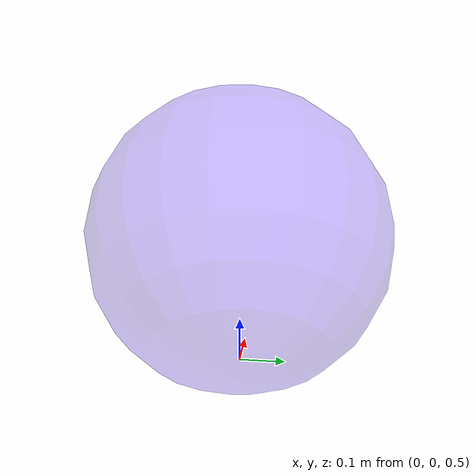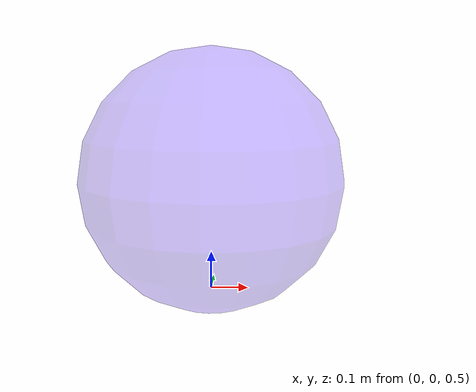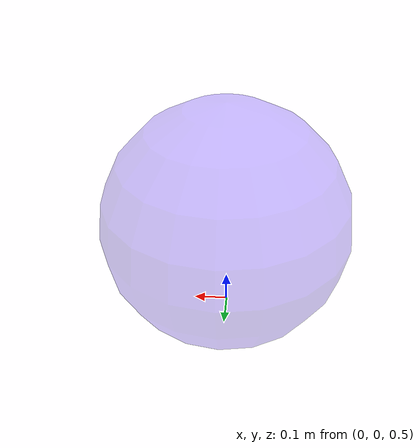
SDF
<?xml version='1.0'?>

<sdf version="1.5">
    <model name="box">
        <static>true</static>
        <link name="link">
            <pose frame=''>0.0 0.0 0.4 0 0 0</pose>
            <inertial>
                <pose frame=''>0 0 0.035 0 0 0</pose>
                <mass>1.0e-19</mass>
                <inertia>
                    <ixx>0.0</ixx>
                    <ixy>0</ixy>
                    <ixz>0</ixz>
                    <iyy>0.0</iyy>
                    <iyz>0</iyz>
                    <izz>0.5</izz>
                </inertia>
            </inertial>

            <visual name="visual">
                <pose>0.0 0.0 0.4 0 0 0</pose>
                <geometry>
                    <sphere>
                        <radius>0.35</radius>

                    </sphere>
                </geometry>
                <material>
                    <ambient>0.3 0.1 1 0.3</ambient>
                    <diffuse>0.3 0.1 1 0.3</diffuse>
                    <specular>0.3 0.1 1 0.3</specular>
                    <emissive>0 0 0 0.3</emissive>
              </material>
            </visual>
        </link>
    </model>
</sdf>
